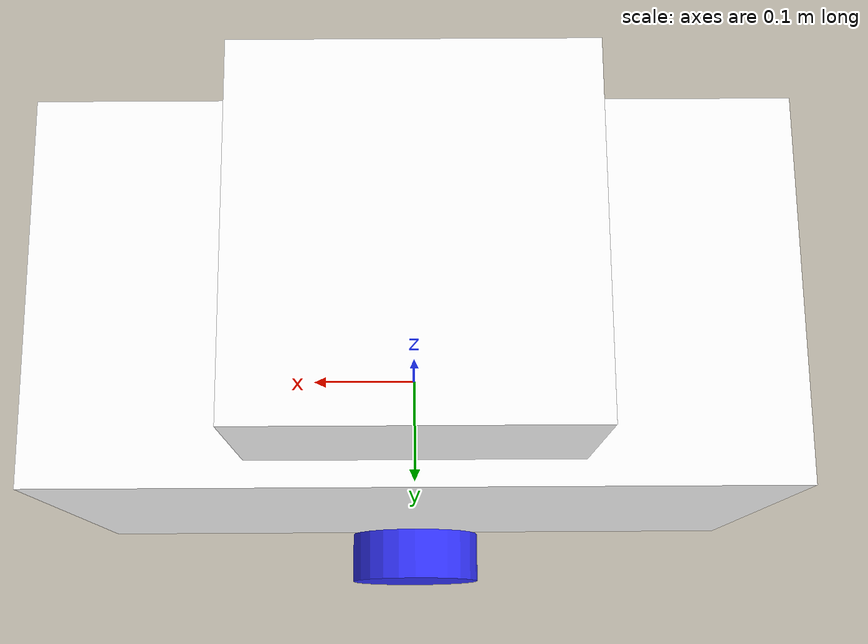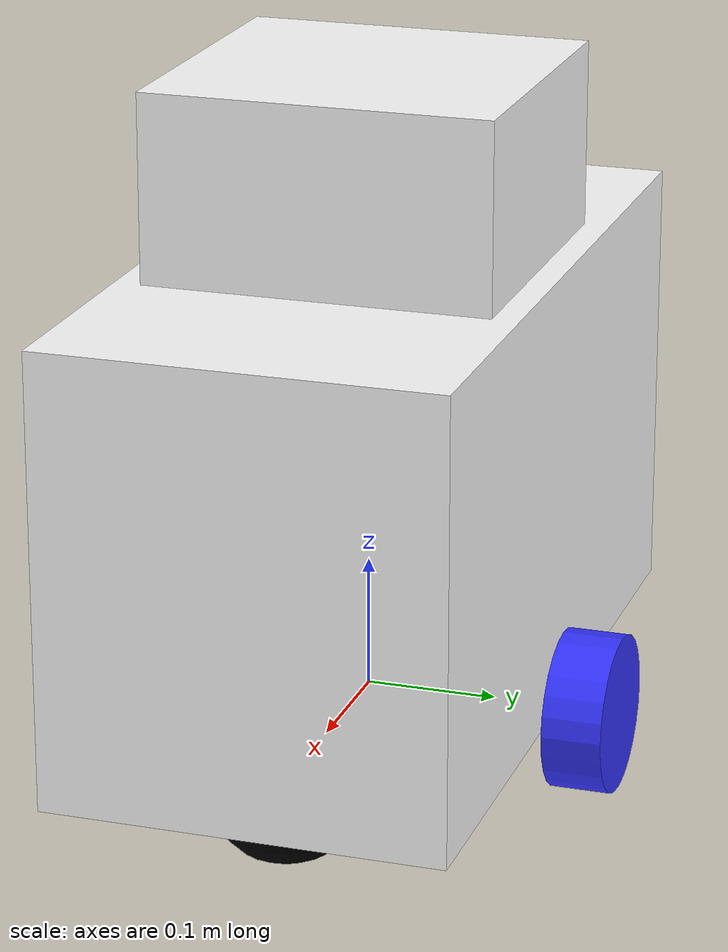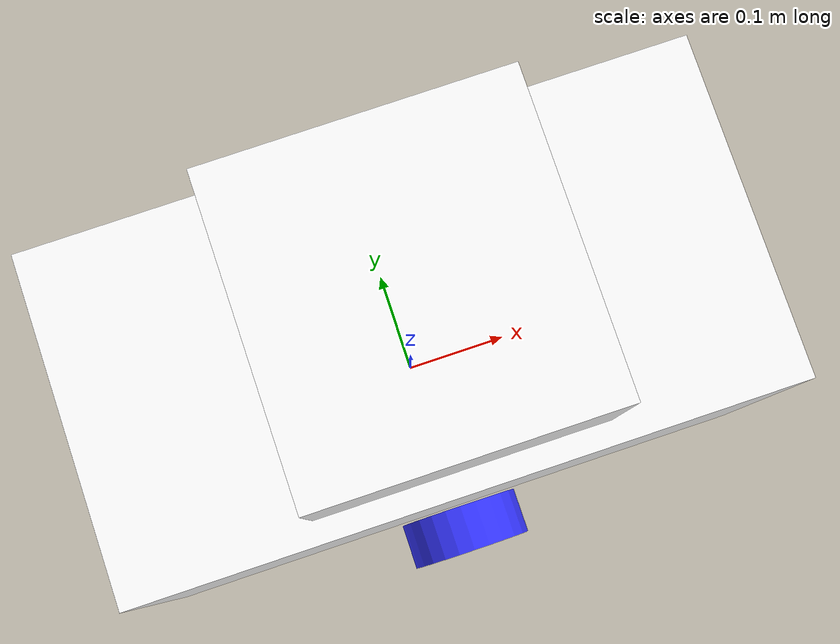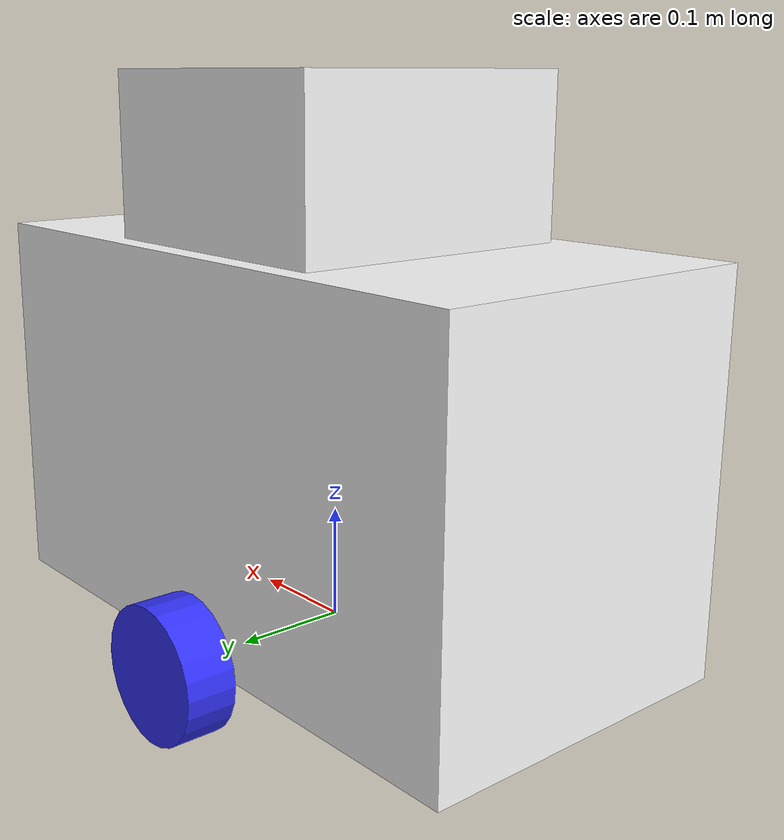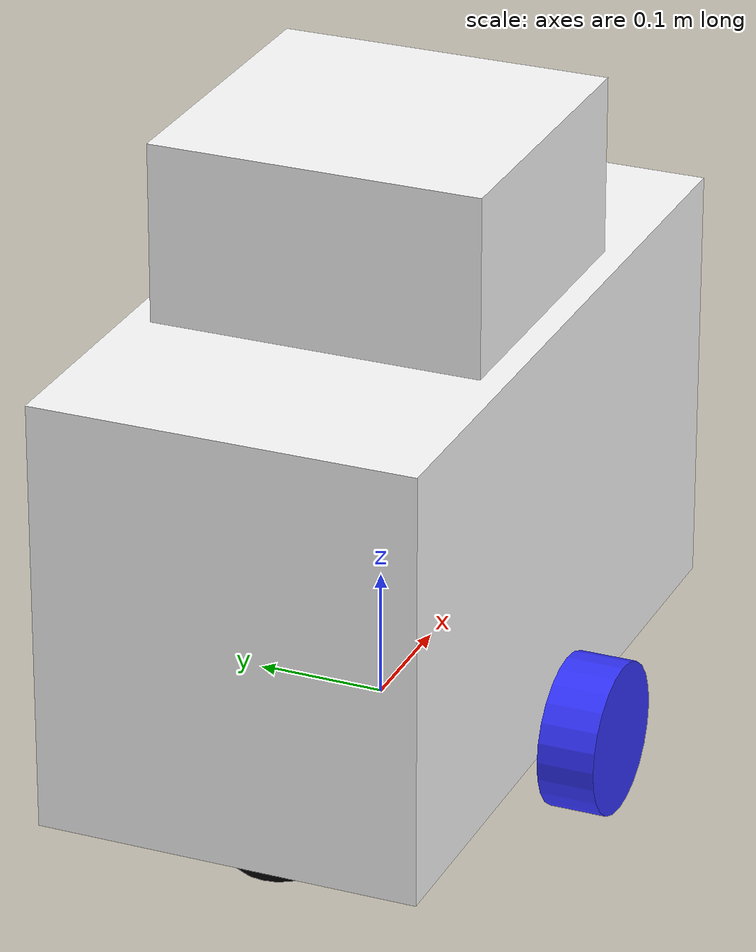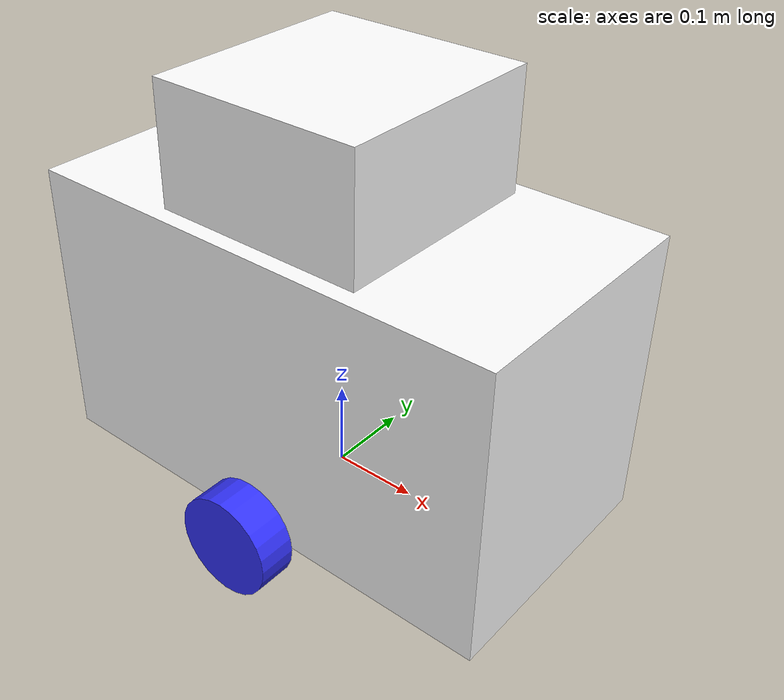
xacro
<?xml version="1.0"?>
<robot xmlns:xacro="http://www.ros.org/wiki/xacro">

    <xacro:include filename="inertial_macros.xacro"/>

    <material name="white">
        <color rgba="1 1 1 1"/>
    </material>

    <material name="orange">
        <color rgba="1 0.3 0.1 1"/>
    </material>

    <material name="blue">
        <color rgba="0.2 0.2 1 1"/>
    </material>

    <material name="black">
        <color rgba="0 0 0 1"/>
    </material>

    <material name="red">
        <color rgba="1 0 0 1"/>
    </material>

    <!-- BASE LINK -->

    <link name="base_link">

    </link>

    <!-- BASE_FOOTPRINT LINK -->

    <joint name="base_footprint_link" type="fixed">
        <parent link="base_link"/>
        <child link="base_footprint"/>
        <origin xyz="0 0 0" rpy-="0 0 0"/>
    </joint>

    <link name="base_footprint">
    </link>

    <!-- CHASSIS LINK -->

    <joint name="chassis_joint" type="fixed">
        <parent link="base_link"/>
        <child link="chassis"/>
        <origin xyz="-0.29 0 0"/>
    </joint>

    <link name="chassis">
        <visual>
            <origin xyz="0.29 0 0.17"/>
            <geometry>
                <box size="0.58 0.3 0.34"/>
            </geometry>
            <material name="white"/>
        </visual>
        <collision>
            <origin xyz="0.29 0 0.17"/>
            <geometry>
                <box size="0.58 0.3 0.34"/>
            </geometry>
        </collision>
        <xacro:inertial_box mass="7" x="0.58" y="0.3" z="0.34">
            <origin xyz="0.29 0 0.17" rpy="0 0 0"/>
        </xacro:inertial_box>
    </link>

    <gazebo reference="chassis">
        <material>Gazebo/White</material>
    </gazebo>

    <!-- TOP CHASSIS LINK -->

    <joint name="top_chassis_joint" type="fixed">
        <parent link="base_link"/>
        <child link="top_chassis"/>
        <origin xyz="0 0 0.34"/>
    </joint>

    <link name="top_chassis">
        <visual>
            <origin xyz="0 0 0.068"/>
            <geometry>
                <box size="0.25 0.26 0.145"/>
            </geometry>
            <material name="white"/>
        </visual>
        <collision>
            <origin xyz="0 0 0.068"/>
            <geometry>
                <box size="0.25 0.26 0.145"/>
            </geometry>
            <material name="white"/>
        </collision>
        <xacro:inertial_box mass="0.5" x="0.25" y="0.26" z="0.145">
            <origin xyz="0 0 0.068" rpy="0 0 0"/>
        </xacro:inertial_box>
    </link>

    <gazebo reference="top_chassis_joint">
        <material>Gazebo/White</material>
    </gazebo>

    <!-- LEFT WHEEL LINK -->

    <joint name="left_wheel_joint" type="continuous">
        <parent link="base_link"/>
        <child link="left_wheel"/>
        <origin xyz="0 0.175 0" rpy="-${pi/2} 0 0"/>
        <axis xyz="0 0 1"/>
    </joint>

    <link name="left_wheel">
        <visual>
            <geometry>
                <cylinder radius="0.06" length="0.045"/>
            </geometry>
            <material name="blue"/>
        </visual>
        <collision>
            <geometry>
                <cylinder radius="0.06" length="0.045"/>
            </geometry>
        </collision>
        <xacro:inertial_cylinder mass="0.1" length="0.045" radius="0.06">
            <origin xyz="0 0 0" rpy="0 0 0"/>
        </xacro:inertial_cylinder>
    </link>

    <gazebo reference="left_wheel">
        <material>Gazebo/Blue</material>
    </gazebo>

    <!-- RIGHT WHEEL LINK -->

    <joint name="right_wheel_joint" type="continuous">
        <parent link="base_link"/>
        <child link="right_wheel"/>
        <origin xyz="0 -0.175 0" rpy="${pi/2} 0 0"/>
        <axis xyz="0 0 -1"/>
    </joint>

    <link name="right_wheel">
        <visual>
            <geometry>
                    <cylinder radius="0.06" length="0.045"/>
            </geometry>
            <material name="blue"/>
        </visual>
        <collision>
            <geometry>
                    <cylinder radius="0.06" length="0.045"/>
            </geometry>
        </collision>
        <xacro:inertial_cylinder mass="0.1" length="0.045" radius="0.06">
            <origin xyz="0 0 0" rpy="0 0 0"/>
        </xacro:inertial_cylinder>
    </link>

    <gazebo reference="right_wheel">
        <material>Gazebo/Blue</material>
    </gazebo>

    <!-- FRONT CASTER WHEEL LINK -->

    <joint name="front_caster_joint" type="fixed">
        <parent link="chassis"/>
        <child link="front_caster_wheel"/>
        <origin xyz="0.48 0 0"/>
    </joint>

    <link name="front_caster_wheel">
        <visual>
            <geometry>
                <sphere radius="0.059"/>
            </geometry>
            <material name="black"/>
        </visual>
        <collision>
            <geometry>
                <sphere radius="0.059"/>
            </geometry>
        </collision>
        <xacro:inertial_sphere mass="0.1" radius="0.06">
            <origin xyz="0 0 0" rpy="0 0 0"/>
        </xacro:inertial_sphere>
    </link>

    <gazebo reference="front_caster_wheel">
        <material>Gazebo/Black</material>
        <mu1 value="0.001"/>
        <mu2 value="0.001"/>
    </gazebo>

    <!-- BACK CASTER WHEEL LINK -->

    <joint name="back_caster_joint" type="fixed">
        <parent link="chassis"/>
        <child link="back_caster_wheel"/>
        <origin xyz="0.1 0 0"/>
    </joint>

    <link name="back_caster_wheel">
        <visual>
            <geometry>
                <sphere radius="0.059"/>
            </geometry>
            <material name="black"/>
        </visual>
        <collision>
            <geometry>
                <sphere radius="0.059"/>
            </geometry>
        </collision>
    </link>

    <gazebo reference="back_caster_wheel">
        <material>Gazebo/Black</material>
        <mu1 value="0.001"/>
        <mu2 value="0.001"/>
    </gazebo>

</robot>
